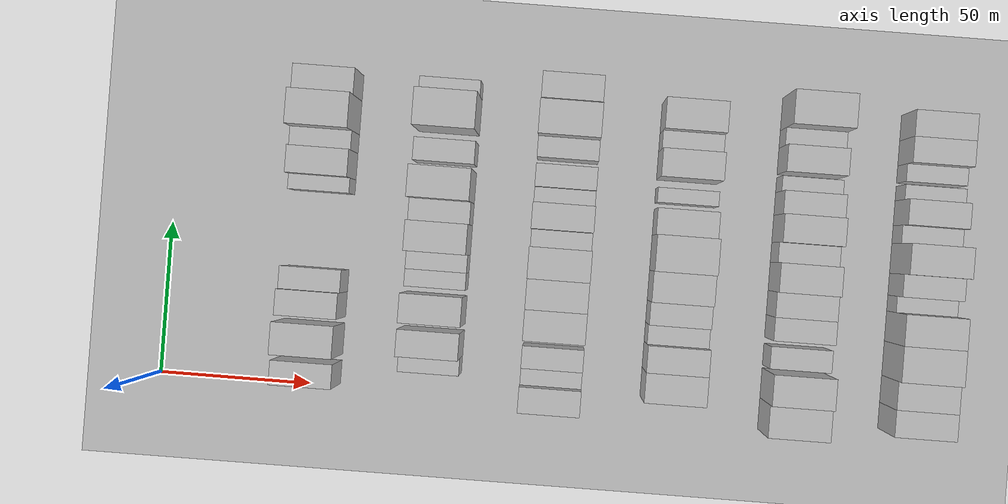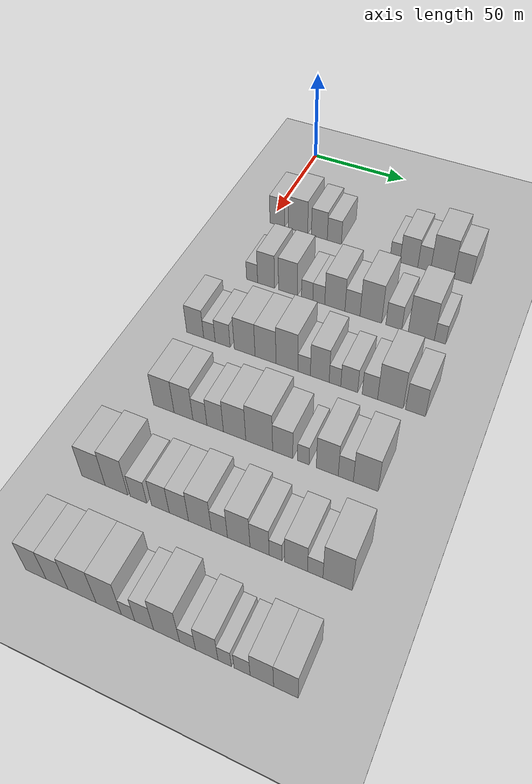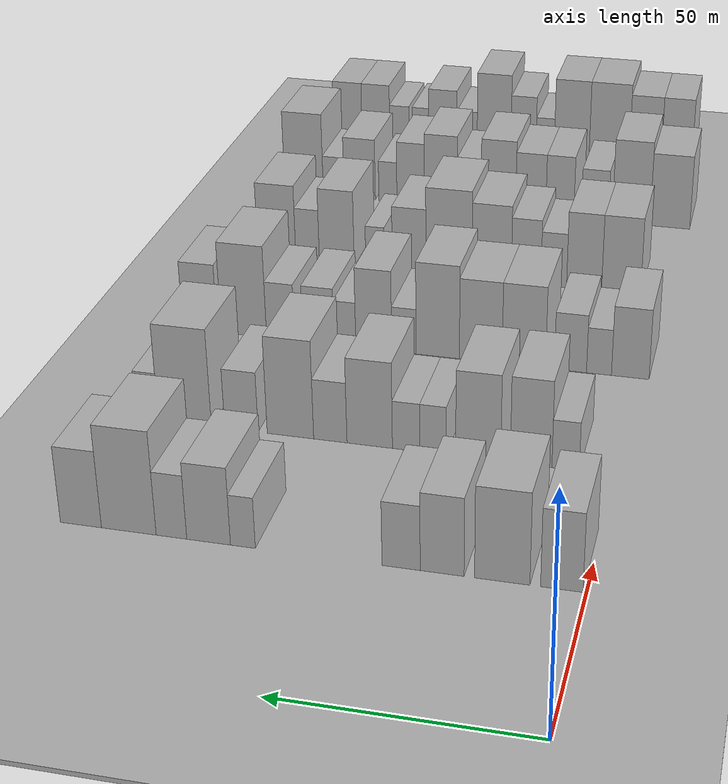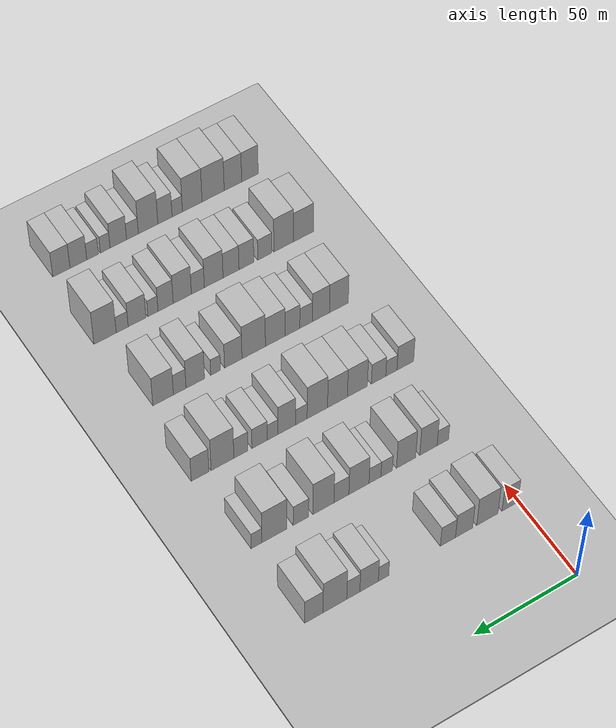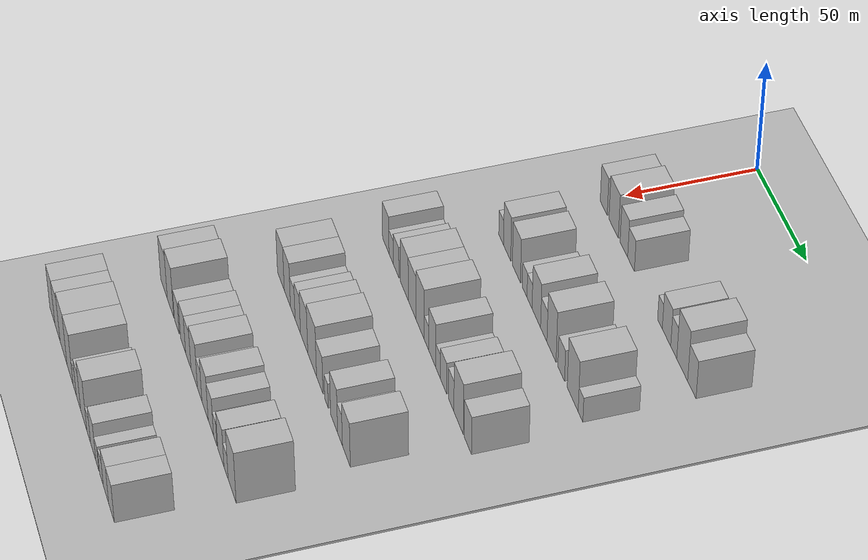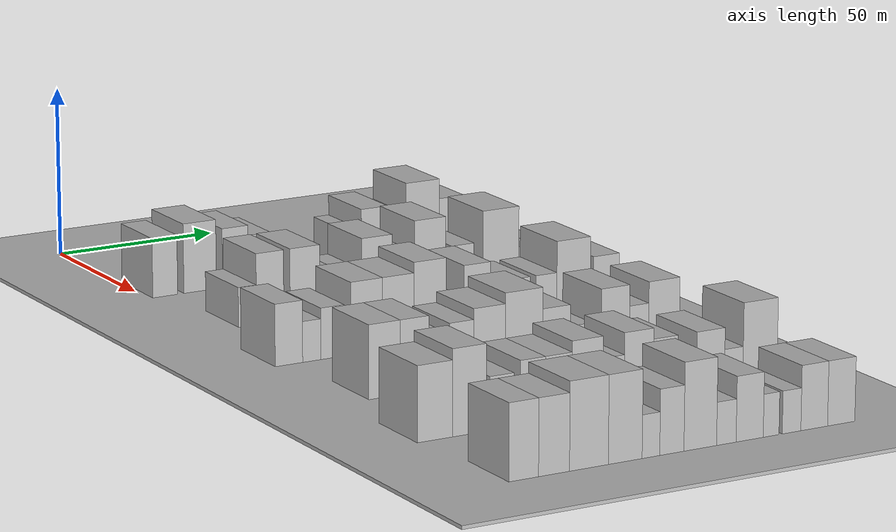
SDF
<sdf version="1.6">
 <world name="default">
  <include><name>ground_plane_1</name><uri>model://HANNAS_ground_plane</uri></include>
  <include>
   <name>ground_plane_2</name>
   <uri>model://HANNAS_ground_plane</uri>
   <pose>100 0 0  0 0 0</pose>
  </include>
  <model name="building_73">
   <static>1</static>
   <pose>50.0000 4.5875 0 0.000000 0.000000 0.000000</pose>
   <link name="link">
    <pose>0 0 9.00 0 0 0</pose>
    <collision name="collision"><geometry><box><size>20.0000 7.9343 18.0000</size></box></geometry></collision>
    <visual name="visual">
     <cast_shadows>0</cast_shadows>
     <geometry><box><size>20.0000 7.9343 18.0000</size></box></geometry>
     <material>
      <script>
       <uri>model://HANNAS_wall/materials/scripts</uri>
       <uri>model://HANNAS_wall/materials/textures</uri>
       <name>vrc/HANNAS_wall</name>
      </script>
     </material>
    </visual>
   </link>
  </model>
  <model name="building_74">
   <static>1</static>
   <pose>50.0000 15.7902 0 0.000000 0.000000 0.000000</pose>
   <link name="link">
    <pose>0 0 10.50 0 0 0</pose>
    <collision name="collision"><geometry><box><size>20.0000 10.4711 21.0000</size></box></geometry></collision>
    <visual name="visual">
     <cast_shadows>0</cast_shadows>
     <geometry><box><size>20.0000 10.4711 21.0000</size></box></geometry>
     <material>
      <script>
       <uri>model://HANNAS_wall/materials/scripts</uri>
       <uri>model://HANNAS_wall/materials/textures</uri>
       <name>vrc/HANNAS_wall</name>
      </script>
     </material>
    </visual>
   </link>
  </model>
  <model name="building_75">
   <static>1</static>
   <pose>50.0000 27.2315 0 0.000000 0.000000 0.000000</pose>
   <link name="link">
    <pose>0 0 9.00 0 0 0</pose>
    <collision name="collision"><geometry><box><size>20.0000 8.4114 18.0000</size></box></geometry></collision>
    <visual name="visual">
     <cast_shadows>0</cast_shadows>
     <geometry><box><size>20.0000 8.4114 18.0000</size></box></geometry>
     <material>
      <script>
       <uri>model://HANNAS_wall/materials/scripts</uri>
       <uri>model://HANNAS_wall/materials/textures</uri>
       <name>vrc/HANNAS_wall</name>
      </script>
     </material>
    </visual>
   </link>
  </model>
  <model name="building_76">
   <static>1</static>
   <pose>50.0000 35.1277 0 0.000000 0.000000 0.000000</pose>
   <link name="link">
    <pose>0 0 7.50 0 0 0</pose>
    <collision name="collision"><geometry><box><size>20.0000 7.3810 15.0000</size></box></geometry></collision>
    <visual name="visual">
     <cast_shadows>0</cast_shadows>
     <geometry><box><size>20.0000 7.3810 15.0000</size></box></geometry>
     <material>
      <script>
       <uri>model://HANNAS_wall/materials/scripts</uri>
       <uri>model://HANNAS_wall/materials/textures</uri>
       <name>vrc/HANNAS_wall</name>
      </script>
     </material>
    </visual>
   </link>
  </model>
  <model name="building_77">
   <static>1</static>
   <pose>50.0000 66.2983 0 0.000000 0.000000 0.000000</pose>
   <link name="link">
    <pose>0 0 6.00 0 0 0</pose>
    <collision name="collision"><geometry><box><size>20.0000 4.9868 12.0000</size></box></geometry></collision>
    <visual name="visual">
     <cast_shadows>0</cast_shadows>
     <geometry><box><size>20.0000 4.9868 12.0000</size></box></geometry>
     <material>
      <script>
       <uri>model://HANNAS_wall/materials/scripts</uri>
       <uri>model://HANNAS_wall/materials/textures</uri>
       <name>vrc/HANNAS_wall</name>
      </script>
     </material>
    </visual>
   </link>
  </model>
  <model name="building_78">
   <static>1</static>
   <pose>50.0000 73.2116 0 0.000000 0.000000 0.000000</pose>
   <link name="link">
    <pose>0 0 9.00 0 0 0</pose>
    <collision name="collision"><geometry><box><size>20.0000 8.8399 18.0000</size></box></geometry></collision>
    <visual name="visual">
     <cast_shadows>0</cast_shadows>
     <geometry><box><size>20.0000 8.8399 18.0000</size></box></geometry>
     <material>
      <script>
       <uri>model://HANNAS_wall/materials/scripts</uri>
       <uri>model://HANNAS_wall/materials/textures</uri>
       <name>vrc/HANNAS_wall</name>
      </script>
     </material>
    </visual>
   </link>
  </model>
  <model name="building_79">
   <static>1</static>
   <pose>50.0000 80.7484 0 0.000000 0.000000 0.000000</pose>
   <link name="link">
    <pose>0 0 7.50 0 0 0</pose>
    <collision name="collision"><geometry><box><size>20.0000 6.2337 15.0000</size></box></geometry></collision>
    <visual name="visual">
     <cast_shadows>0</cast_shadows>
     <geometry><box><size>20.0000 6.2337 15.0000</size></box></geometry>
     <material>
      <script>
       <uri>model://HANNAS_wall/materials/scripts</uri>
       <uri>model://HANNAS_wall/materials/textures</uri>
       <name>vrc/HANNAS_wall</name>
      </script>
     </material>
    </visual>
   </link>
  </model>
  <model name="building_80">
   <static>1</static>
   <pose>50.0000 89.4973 0 0.000000 0.000000 0.000000</pose>
   <link name="link">
    <pose>0 0 12.00 0 0 0</pose>
    <collision name="collision"><geometry><box><size>20.0000 11.2641 24.0000</size></box></geometry></collision>
    <visual name="visual">
     <cast_shadows>0</cast_shadows>
     <geometry><box><size>20.0000 11.2641 24.0000</size></box></geometry>
     <material>
      <script>
       <uri>model://HANNAS_wall/materials/scripts</uri>
       <uri>model://HANNAS_wall/materials/textures</uri>
       <name>vrc/HANNAS_wall</name>
      </script>
     </material>
    </visual>
   </link>
  </model>
  <model name="building_81">
   <static>1</static>
   <pose>50.0000 99.4013 0 0.000000 0.000000 0.000000</pose>
   <link name="link">
    <pose>0 0 9.00 0 0 0</pose>
    <collision name="collision"><geometry><box><size>20.0000 8.5439 18.0000</size></box></geometry></collision>
    <visual name="visual">
     <cast_shadows>0</cast_shadows>
     <geometry><box><size>20.0000 8.5439 18.0000</size></box></geometry>
     <material>
      <script>
       <uri>model://HANNAS_wall/materials/scripts</uri>
       <uri>model://HANNAS_wall/materials/textures</uri>
       <name>vrc/HANNAS_wall</name>
      </script>
     </material>
    </visual>
   </link>
  </model>
  <model name="building_209">
   <static>1</static>
   <pose>90.0000 10.2039 0 0.000000 0.000000 0.000000</pose>
   <link name="link">
    <pose>0 0 6.00 0 0 0</pose>
    <collision name="collision"><geometry><box><size>20.0000 5.6777 12.0000</size></box></geometry></collision>
    <visual name="visual">
     <cast_shadows>0</cast_shadows>
     <geometry><box><size>20.0000 5.6777 12.0000</size></box></geometry>
     <material>
      <script>
       <uri>model://HANNAS_wall/materials/scripts</uri>
       <uri>model://HANNAS_wall/materials/textures</uri>
       <name>vrc/HANNAS_wall</name>
      </script>
     </material>
    </visual>
   </link>
  </model>
  <model name="building_210">
   <static>1</static>
   <pose>90.0000 17.3810 0 0.000000 0.000000 0.000000</pose>
   <link name="link">
    <pose>0 0 10.50 0 0 0</pose>
    <collision name="collision"><geometry><box><size>20.0000 8.6765 21.0000</size></box></geometry></collision>
    <visual name="visual">
     <cast_shadows>0</cast_shadows>
     <geometry><box><size>20.0000 8.6765 21.0000</size></box></geometry>
     <material>
      <script>
       <uri>model://HANNAS_wall/materials/scripts</uri>
       <uri>model://HANNAS_wall/materials/textures</uri>
       <name>vrc/HANNAS_wall</name>
      </script>
     </material>
    </visual>
   </link>
  </model>
  <model name="building_211">
   <static>1</static>
   <pose>90.0000 28.4719 0 0.000000 0.000000 0.000000</pose>
   <link name="link">
    <pose>0 0 10.50 0 0 0</pose>
    <collision name="collision"><geometry><box><size>20.0000 9.5054 21.0000</size></box></geometry></collision>
    <visual name="visual">
     <cast_shadows>0</cast_shadows>
     <geometry><box><size>20.0000 9.5054 21.0000</size></box></geometry>
     <material>
      <script>
       <uri>model://HANNAS_wall/materials/scripts</uri>
       <uri>model://HANNAS_wall/materials/textures</uri>
       <name>vrc/HANNAS_wall</name>
      </script>
     </material>
    </visual>
   </link>
  </model>
  <model name="building_212">
   <static>1</static>
   <pose>90.0000 38.0487 0 0.000000 0.000000 0.000000</pose>
   <link name="link">
    <pose>0 0 6.00 0 0 0</pose>
    <collision name="collision"><geometry><box><size>20.0000 5.6481 12.0000</size></box></geometry></collision>
    <visual name="visual">
     <cast_shadows>0</cast_shadows>
     <geometry><box><size>20.0000 5.6481 12.0000</size></box></geometry>
     <material>
      <script>
       <uri>model://HANNAS_wall/materials/scripts</uri>
       <uri>model://HANNAS_wall/materials/textures</uri>
       <name>vrc/HANNAS_wall</name>
      </script>
     </material>
    </visual>
   </link>
  </model>
  <model name="building_213">
   <static>1</static>
   <pose>90.0000 43.8070 0 0.000000 0.000000 0.000000</pose>
   <link name="link">
    <pose>0 0 6.00 0 0 0</pose>
    <collision name="collision"><geometry><box><size>20.0000 5.8685 12.0000</size></box></geometry></collision>
    <visual name="visual">
     <cast_shadows>0</cast_shadows>
     <geometry><box><size>20.0000 5.8685 12.0000</size></box></geometry>
     <material>
      <script>
       <uri>model://HANNAS_wall/materials/scripts</uri>
       <uri>model://HANNAS_wall/materials/textures</uri>
       <name>vrc/HANNAS_wall</name>
      </script>
     </material>
    </visual>
   </link>
  </model>
  <model name="building_214">
   <static>1</static>
   <pose>90.0000 51.6555 0 0.000000 0.000000 0.000000</pose>
   <link name="link">
    <pose>0 0 10.50 0 0 0</pose>
    <collision name="collision"><geometry><box><size>20.0000 9.8285 21.0000</size></box></geometry></collision>
    <visual name="visual">
     <cast_shadows>0</cast_shadows>
     <geometry><box><size>20.0000 9.8285 21.0000</size></box></geometry>
     <material>
      <script>
       <uri>model://HANNAS_wall/materials/scripts</uri>
       <uri>model://HANNAS_wall/materials/textures</uri>
       <name>vrc/HANNAS_wall</name>
      </script>
     </material>
    </visual>
   </link>
  </model>
  <model name="building_215">
   <static>1</static>
   <pose>90.0000 60.2045 0 0.000000 0.000000 0.000000</pose>
   <link name="link">
    <pose>0 0 7.50 0 0 0</pose>
    <collision name="collision"><geometry><box><size>20.0000 7.2696 15.0000</size></box></geometry></collision>
    <visual name="visual">
     <cast_shadows>0</cast_shadows>
     <geometry><box><size>20.0000 7.2696 15.0000</size></box></geometry>
     <material>
      <script>
       <uri>model://HANNAS_wall/materials/scripts</uri>
       <uri>model://HANNAS_wall/materials/textures</uri>
       <name>vrc/HANNAS_wall</name>
      </script>
     </material>
    </visual>
   </link>
  </model>
  <model name="building_216">
   <static>1</static>
   <pose>90.0000 68.9552 0 0.000000 0.000000 0.000000</pose>
   <link name="link">
    <pose>0 0 12.00 0 0 0</pose>
    <collision name="collision"><geometry><box><size>20.0000 10.2319 24.0000</size></box></geometry></collision>
    <visual name="visual">
     <cast_shadows>0</cast_shadows>
     <geometry><box><size>20.0000 10.2319 24.0000</size></box></geometry>
     <material>
      <script>
       <uri>model://HANNAS_wall/materials/scripts</uri>
       <uri>model://HANNAS_wall/materials/textures</uri>
       <name>vrc/HANNAS_wall</name>
      </script>
     </material>
    </visual>
   </link>
  </model>
  <model name="building_217">
   <static>1</static>
   <pose>90.0000 79.7930 0 0.000000 0.000000 0.000000</pose>
   <link name="link">
    <pose>0 0 7.50 0 0 0</pose>
    <collision name="collision"><geometry><box><size>20.0000 7.4435 15.0000</size></box></geometry></collision>
    <visual name="visual">
     <cast_shadows>0</cast_shadows>
     <geometry><box><size>20.0000 7.4435 15.0000</size></box></geometry>
     <material>
      <script>
       <uri>model://HANNAS_wall/materials/scripts</uri>
       <uri>model://HANNAS_wall/materials/textures</uri>
       <name>vrc/HANNAS_wall</name>
      </script>
     </material>
    </visual>
   </link>
  </model>
  <model name="building_218">
   <static>1</static>
   <pose>90.0000 92.4894 0 0.000000 0.000000 0.000000</pose>
   <link name="link">
    <pose>0 0 12.00 0 0 0</pose>
    <collision name="collision"><geometry><box><size>20.0000 11.9494 24.0000</size></box></geometry></collision>
    <visual name="visual">
     <cast_shadows>0</cast_shadows>
     <geometry><box><size>20.0000 11.9494 24.0000</size></box></geometry>
     <material>
      <script>
       <uri>model://HANNAS_wall/materials/scripts</uri>
       <uri>model://HANNAS_wall/materials/textures</uri>
       <name>vrc/HANNAS_wall</name>
      </script>
     </material>
    </visual>
   </link>
  </model>
  <model name="building_219">
   <static>1</static>
   <pose>90.0000 101.0176 0 0.000000 0.000000 0.000000</pose>
   <link name="link">
    <pose>0 0 6.00 0 0 0</pose>
    <collision name="collision"><geometry><box><size>20.0000 5.1068 12.0000</size></box></geometry></collision>
    <visual name="visual">
     <cast_shadows>0</cast_shadows>
     <geometry><box><size>20.0000 5.1068 12.0000</size></box></geometry>
     <material>
      <script>
       <uri>model://HANNAS_wall/materials/scripts</uri>
       <uri>model://HANNAS_wall/materials/textures</uri>
       <name>vrc/HANNAS_wall</name>
      </script>
     </material>
    </visual>
   </link>
  </model>
  <model name="building_351">
   <static>1</static>
   <pose>130.0000 1.9299 0 0.000000 0.000000 0.000000</pose>
   <link name="link">
    <pose>0 0 9.00 0 0 0</pose>
    <collision name="collision"><geometry><box><size>20.0000 8.4402 18.0000</size></box></geometry></collision>
    <visual name="visual">
     <cast_shadows>0</cast_shadows>
     <geometry><box><size>20.0000 8.4402 18.0000</size></box></geometry>
     <material>
      <script>
       <uri>model://HANNAS_wall/materials/scripts</uri>
       <uri>model://HANNAS_wall/materials/textures</uri>
       <name>vrc/HANNAS_wall</name>
      </script>
     </material>
    </visual>
   </link>
  </model>
  <model name="building_352">
   <static>1</static>
   <pose>130.0000 8.9673 0 0.000000 0.000000 0.000000</pose>
   <link name="link">
    <pose>0 0 6.00 0 0 0</pose>
    <collision name="collision"><geometry><box><size>20.0000 5.6347 12.0000</size></box></geometry></collision>
    <visual name="visual">
     <cast_shadows>0</cast_shadows>
     <geometry><box><size>20.0000 5.6347 12.0000</size></box></geometry>
     <material>
      <script>
       <uri>model://HANNAS_wall/materials/scripts</uri>
       <uri>model://HANNAS_wall/materials/textures</uri>
       <name>vrc/HANNAS_wall</name>
      </script>
     </material>
    </visual>
   </link>
  </model>
  <model name="building_353">
   <static>1</static>
   <pose>130.0000 15.4343 0 0.000000 0.000000 0.000000</pose>
   <link name="link">
    <pose>0 0 7.50 0 0 0</pose>
    <collision name="collision"><geometry><box><size>20.0000 7.2992 15.0000</size></box></geometry></collision>
    <visual name="visual">
     <cast_shadows>0</cast_shadows>
     <geometry><box><size>20.0000 7.2992 15.0000</size></box></geometry>
     <material>
      <script>
       <uri>model://HANNAS_wall/materials/scripts</uri>
       <uri>model://HANNAS_wall/materials/textures</uri>
       <name>vrc/HANNAS_wall</name>
      </script>
     </material>
    </visual>
   </link>
  </model>
  <model name="building_354">
   <static>1</static>
   <pose>130.0000 26.0752 0 0.000000 0.000000 0.000000</pose>
   <link name="link">
    <pose>0 0 10.50 0 0 0</pose>
    <collision name="collision"><geometry><box><size>20.0000 9.9826 21.0000</size></box></geometry></collision>
    <visual name="visual">
     <cast_shadows>0</cast_shadows>
     <geometry><box><size>20.0000 9.9826 21.0000</size></box></geometry>
     <material>
      <script>
       <uri>model://HANNAS_wall/materials/scripts</uri>
       <uri>model://HANNAS_wall/materials/textures</uri>
       <name>vrc/HANNAS_wall</name>
      </script>
     </material>
    </visual>
   </link>
  </model>
  <model name="building_355">
   <static>1</static>
   <pose>130.0000 36.0092 0 0.000000 0.000000 0.000000</pose>
   <link name="link">
    <pose>0 0 10.50 0 0 0</pose>
    <collision name="collision"><geometry><box><size>20.0000 9.8853 21.0000</size></box></geometry></collision>
    <visual name="visual">
     <cast_shadows>0</cast_shadows>
     <geometry><box><size>20.0000 9.8853 21.0000</size></box></geometry>
     <material>
      <script>
       <uri>model://HANNAS_wall/materials/scripts</uri>
       <uri>model://HANNAS_wall/materials/textures</uri>
       <name>vrc/HANNAS_wall</name>
      </script>
     </material>
    </visual>
   </link>
  </model>
  <model name="building_356">
   <static>1</static>
   <pose>130.0000 46.0207 0 0.000000 0.000000 0.000000</pose>
   <link name="link">
    <pose>0 0 12.00 0 0 0</pose>
    <collision name="collision"><geometry><box><size>20.0000 10.1377 24.0000</size></box></geometry></collision>
    <visual name="visual">
     <cast_shadows>0</cast_shadows>
     <geometry><box><size>20.0000 10.1377 24.0000</size></box></geometry>
     <material>
      <script>
       <uri>model://HANNAS_wall/materials/scripts</uri>
       <uri>model://HANNAS_wall/materials/textures</uri>
       <name>vrc/HANNAS_wall</name>
      </script>
     </material>
    </visual>
   </link>
  </model>
  <model name="building_357">
   <static>1</static>
   <pose>130.0000 53.9658 0 0.000000 0.000000 0.000000</pose>
   <link name="link">
    <pose>0 0 6.00 0 0 0</pose>
    <collision name="collision"><geometry><box><size>20.0000 5.7525 12.0000</size></box></geometry></collision>
    <visual name="visual">
     <cast_shadows>0</cast_shadows>
     <geometry><box><size>20.0000 5.7525 12.0000</size></box></geometry>
     <material>
      <script>
       <uri>model://HANNAS_wall/materials/scripts</uri>
       <uri>model://HANNAS_wall/materials/textures</uri>
       <name>vrc/HANNAS_wall</name>
      </script>
     </material>
    </visual>
   </link>
  </model>
  <model name="building_358">
   <static>1</static>
   <pose>130.0000 61.1033 0 0.000000 0.000000 0.000000</pose>
   <link name="link">
    <pose>0 0 10.50 0 0 0</pose>
    <collision name="collision"><geometry><box><size>20.0000 8.5226 21.0000</size></box></geometry></collision>
    <visual name="visual">
     <cast_shadows>0</cast_shadows>
     <geometry><box><size>20.0000 8.5226 21.0000</size></box></geometry>
     <material>
      <script>
       <uri>model://HANNAS_wall/materials/scripts</uri>
       <uri>model://HANNAS_wall/materials/textures</uri>
       <name>vrc/HANNAS_wall</name>
      </script>
     </material>
    </visual>
   </link>
  </model>
  <model name="building_359">
   <static>1</static>
   <pose>130.0000 67.9864 0 0.000000 0.000000 0.000000</pose>
   <link name="link">
    <pose>0 0 6.00 0 0 0</pose>
    <collision name="collision"><geometry><box><size>20.0000 5.2435 12.0000</size></box></geometry></collision>
    <visual name="visual">
     <cast_shadows>0</cast_shadows>
     <geometry><box><size>20.0000 5.2435 12.0000</size></box></geometry>
     <material>
      <script>
       <uri>model://HANNAS_wall/materials/scripts</uri>
       <uri>model://HANNAS_wall/materials/textures</uri>
       <name>vrc/HANNAS_wall</name>
      </script>
     </material>
    </visual>
   </link>
  </model>
  <model name="building_360">
   <static>1</static>
   <pose>130.0000 74.3565 0 0.000000 0.000000 0.000000</pose>
   <link name="link">
    <pose>0 0 7.50 0 0 0</pose>
    <collision name="collision"><geometry><box><size>20.0000 7.4967 15.0000</size></box></geometry></collision>
    <visual name="visual">
     <cast_shadows>0</cast_shadows>
     <geometry><box><size>20.0000 7.4967 15.0000</size></box></geometry>
     <material>
      <script>
       <uri>model://HANNAS_wall/materials/scripts</uri>
       <uri>model://HANNAS_wall/materials/textures</uri>
       <name>vrc/HANNAS_wall</name>
      </script>
     </material>
    </visual>
   </link>
  </model>
  <model name="building_361">
   <static>1</static>
   <pose>130.0000 83.4857 0 0.000000 0.000000 0.000000</pose>
   <link name="link">
    <pose>0 0 7.50 0 0 0</pose>
    <collision name="collision"><geometry><box><size>20.0000 6.7618 15.0000</size></box></geometry></collision>
    <visual name="visual">
     <cast_shadows>0</cast_shadows>
     <geometry><box><size>20.0000 6.7618 15.0000</size></box></geometry>
     <material>
      <script>
       <uri>model://HANNAS_wall/materials/scripts</uri>
       <uri>model://HANNAS_wall/materials/textures</uri>
       <name>vrc/HANNAS_wall</name>
      </script>
     </material>
    </visual>
   </link>
  </model>
  <model name="building_362">
   <static>1</static>
   <pose>130.0000 92.3909 0 0.000000 0.000000 0.000000</pose>
   <link name="link">
    <pose>0 0 12.00 0 0 0</pose>
    <collision name="collision"><geometry><box><size>20.0000 11.0485 24.0000</size></box></geometry></collision>
    <visual name="visual">
     <cast_shadows>0</cast_shadows>
     <geometry><box><size>20.0000 11.0485 24.0000</size></box></geometry>
     <material>
      <script>
       <uri>model://HANNAS_wall/materials/scripts</uri>
       <uri>model://HANNAS_wall/materials/textures</uri>
       <name>vrc/HANNAS_wall</name>
      </script>
     </material>
    </visual>
   </link>
  </model>
  <model name="building_363">
   <static>1</static>
   <pose>130.0000 103.1603 0 0.000000 0.000000 0.000000</pose>
   <link name="link">
    <pose>0 0 9.00 0 0 0</pose>
    <collision name="collision"><geometry><box><size>20.0000 8.4903 18.0000</size></box></geometry></collision>
    <visual name="visual">
     <cast_shadows>0</cast_shadows>
     <geometry><box><size>20.0000 8.4903 18.0000</size></box></geometry>
     <material>
      <script>
       <uri>model://HANNAS_wall/materials/scripts</uri>
       <uri>model://HANNAS_wall/materials/textures</uri>
       <name>vrc/HANNAS_wall</name>
      </script>
     </material>
    </visual>
   </link>
  </model>
  <model name="building_495">
   <static>1</static>
   <pose>170.0000 9.2009 0 0.000000 0.000000 0.000000</pose>
   <link name="link">
    <pose>0 0 10.50 0 0 0</pose>
    <collision name="collision"><geometry><box><size>20.0000 9.5706 21.0000</size></box></geometry></collision>
    <visual name="visual">
     <cast_shadows>0</cast_shadows>
     <geometry><box><size>20.0000 9.5706 21.0000</size></box></geometry>
     <material>
      <script>
       <uri>model://HANNAS_wall/materials/scripts</uri>
       <uri>model://HANNAS_wall/materials/textures</uri>
       <name>vrc/HANNAS_wall</name>
      </script>
     </material>
    </visual>
   </link>
  </model>
  <model name="building_496">
   <static>1</static>
   <pose>170.0000 18.3097 0 0.000000 0.000000 0.000000</pose>
   <link name="link">
    <pose>0 0 10.50 0 0 0</pose>
    <collision name="collision"><geometry><box><size>20.0000 8.6471 21.0000</size></box></geometry></collision>
    <visual name="visual">
     <cast_shadows>0</cast_shadows>
     <geometry><box><size>20.0000 8.6471 21.0000</size></box></geometry>
     <material>
      <script>
       <uri>model://HANNAS_wall/materials/scripts</uri>
       <uri>model://HANNAS_wall/materials/textures</uri>
       <name>vrc/HANNAS_wall</name>
      </script>
     </material>
    </visual>
   </link>
  </model>
  <model name="building_497">
   <static>1</static>
   <pose>170.0000 25.8226 0 0.000000 0.000000 0.000000</pose>
   <link name="link">
    <pose>0 0 7.50 0 0 0</pose>
    <collision name="collision"><geometry><box><size>20.0000 6.3787 15.0000</size></box></geometry></collision>
    <visual name="visual">
     <cast_shadows>0</cast_shadows>
     <geometry><box><size>20.0000 6.3787 15.0000</size></box></geometry>
     <material>
      <script>
       <uri>model://HANNAS_wall/materials/scripts</uri>
       <uri>model://HANNAS_wall/materials/textures</uri>
       <name>vrc/HANNAS_wall</name>
      </script>
     </material>
    </visual>
   </link>
  </model>
  <model name="building_498">
   <static>1</static>
   <pose>170.0000 32.7212 0 0.000000 0.000000 0.000000</pose>
   <link name="link">
    <pose>0 0 9.00 0 0 0</pose>
    <collision name="collision"><geometry><box><size>20.0000 7.4184 18.0000</size></box></geometry></collision>
    <visual name="visual">
     <cast_shadows>0</cast_shadows>
     <geometry><box><size>20.0000 7.4184 18.0000</size></box></geometry>
     <material>
      <script>
       <uri>model://HANNAS_wall/materials/scripts</uri>
       <uri>model://HANNAS_wall/materials/textures</uri>
       <name>vrc/HANNAS_wall</name>
      </script>
     </material>
    </visual>
   </link>
  </model>
  <model name="building_499">
   <static>1</static>
   <pose>170.0000 41.3794 0 0.000000 0.000000 0.000000</pose>
   <link name="link">
    <pose>0 0 10.50 0 0 0</pose>
    <collision name="collision"><geometry><box><size>20.0000 9.8979 21.0000</size></box></geometry></collision>
    <visual name="visual">
     <cast_shadows>0</cast_shadows>
     <geometry><box><size>20.0000 9.8979 21.0000</size></box></geometry>
     <material>
      <script>
       <uri>model://HANNAS_wall/materials/scripts</uri>
       <uri>model://HANNAS_wall/materials/textures</uri>
       <name>vrc/HANNAS_wall</name>
      </script>
     </material>
    </visual>
   </link>
  </model>
  <model name="building_500">
   <static>1</static>
   <pose>170.0000 52.1696 0 0.000000 0.000000 0.000000</pose>
   <link name="link">
    <pose>0 0 12.00 0 0 0</pose>
    <collision name="collision"><geometry><box><size>20.0000 11.6826 24.0000</size></box></geometry></collision>
    <visual name="visual">
     <cast_shadows>0</cast_shadows>
     <geometry><box><size>20.0000 11.6826 24.0000</size></box></geometry>
     <material>
      <script>
       <uri>model://HANNAS_wall/materials/scripts</uri>
       <uri>model://HANNAS_wall/materials/textures</uri>
       <name>vrc/HANNAS_wall</name>
      </script>
     </material>
    </visual>
   </link>
  </model>
  <model name="building_501">
   <static>1</static>
   <pose>170.0000 62.3273 0 0.000000 0.000000 0.000000</pose>
   <link name="link">
    <pose>0 0 9.00 0 0 0</pose>
    <collision name="collision"><geometry><box><size>20.0000 8.6328 18.0000</size></box></geometry></collision>
    <visual name="visual">
     <cast_shadows>0</cast_shadows>
     <geometry><box><size>20.0000 8.6328 18.0000</size></box></geometry>
     <material>
      <script>
       <uri>model://HANNAS_wall/materials/scripts</uri>
       <uri>model://HANNAS_wall/materials/textures</uri>
       <name>vrc/HANNAS_wall</name>
      </script>
     </material>
    </visual>
   </link>
  </model>
  <model name="building_502">
   <static>1</static>
   <pose>170.0000 71.0734 0 0.000000 0.000000 0.000000</pose>
   <link name="link">
    <pose>0 0 6.00 0 0 0</pose>
    <collision name="collision"><geometry><box><size>20.0000 4.8594 12.0000</size></box></geometry></collision>
    <visual name="visual">
     <cast_shadows>0</cast_shadows>
     <geometry><box><size>20.0000 4.8594 12.0000</size></box></geometry>
     <material>
      <script>
       <uri>model://HANNAS_wall/materials/scripts</uri>
       <uri>model://HANNAS_wall/materials/textures</uri>
       <name>vrc/HANNAS_wall</name>
      </script>
     </material>
    </visual>
   </link>
  </model>
  <model name="building_503">
   <static>1</static>
   <pose>170.0000 81.0449 0 0.000000 0.000000 0.000000</pose>
   <link name="link">
    <pose>0 0 10.50 0 0 0</pose>
    <collision name="collision"><geometry><box><size>20.0000 9.0837 21.0000</size></box></geometry></collision>
    <visual name="visual">
     <cast_shadows>0</cast_shadows>
     <geometry><box><size>20.0000 9.0837 21.0000</size></box></geometry>
     <material>
      <script>
       <uri>model://HANNAS_wall/materials/scripts</uri>
       <uri>model://HANNAS_wall/materials/textures</uri>
       <name>vrc/HANNAS_wall</name>
      </script>
     </material>
    </visual>
   </link>
  </model>
  <model name="building_504">
   <static>1</static>
   <pose>170.0000 88.6730 0 0.000000 0.000000 0.000000</pose>
   <link name="link">
    <pose>0 0 7.50 0 0 0</pose>
    <collision name="collision"><geometry><box><size>20.0000 6.1724 15.0000</size></box></geometry></collision>
    <visual name="visual">
     <cast_shadows>0</cast_shadows>
     <geometry><box><size>20.0000 6.1724 15.0000</size></box></geometry>
     <material>
      <script>
       <uri>model://HANNAS_wall/materials/scripts</uri>
       <uri>model://HANNAS_wall/materials/textures</uri>
       <name>vrc/HANNAS_wall</name>
      </script>
     </material>
    </visual>
   </link>
  </model>
  <model name="building_505">
   <static>1</static>
   <pose>170.0000 96.7670 0 0.000000 0.000000 0.000000</pose>
   <link name="link">
    <pose>0 0 10.50 0 0 0</pose>
    <collision name="collision"><geometry><box><size>20.0000 10.0156 21.0000</size></box></geometry></collision>
    <visual name="visual">
     <cast_shadows>0</cast_shadows>
     <geometry><box><size>20.0000 10.0156 21.0000</size></box></geometry>
     <material>
      <script>
       <uri>model://HANNAS_wall/materials/scripts</uri>
       <uri>model://HANNAS_wall/materials/textures</uri>
       <name>vrc/HANNAS_wall</name>
      </script>
     </material>
    </visual>
   </link>
  </model>
  <model name="building_644">
   <static>1</static>
   <pose>210.0000 1.5534 0 0.000000 0.000000 0.000000</pose>
   <link name="link">
    <pose>0 0 10.50 0 0 0</pose>
    <collision name="collision"><geometry><box><size>20.0000 10.4448 21.0000</size></box></geometry></collision>
    <visual name="visual">
     <cast_shadows>0</cast_shadows>
     <geometry><box><size>20.0000 10.4448 21.0000</size></box></geometry>
     <material>
      <script>
       <uri>model://HANNAS_wall/materials/scripts</uri>
       <uri>model://HANNAS_wall/materials/textures</uri>
       <name>vrc/HANNAS_wall</name>
      </script>
     </material>
    </visual>
   </link>
  </model>
  <model name="building_645">
   <static>1</static>
   <pose>210.0000 11.7723 0 0.000000 0.000000 0.000000</pose>
   <link name="link">
    <pose>0 0 12.00 0 0 0</pose>
    <collision name="collision"><geometry><box><size>20.0000 9.9929 24.0000</size></box></geometry></collision>
    <visual name="visual">
     <cast_shadows>0</cast_shadows>
     <geometry><box><size>20.0000 9.9929 24.0000</size></box></geometry>
     <material>
      <script>
       <uri>model://HANNAS_wall/materials/scripts</uri>
       <uri>model://HANNAS_wall/materials/textures</uri>
       <name>vrc/HANNAS_wall</name>
      </script>
     </material>
    </visual>
   </link>
  </model>
  <model name="building_646">
   <static>1</static>
   <pose>210.0000 21.3905 0 0.000000 0.000000 0.000000</pose>
   <link name="link">
    <pose>0 0 7.50 0 0 0</pose>
    <collision name="collision"><geometry><box><size>20.0000 7.2435 15.0000</size></box></geometry></collision>
    <visual name="visual">
     <cast_shadows>0</cast_shadows>
     <geometry><box><size>20.0000 7.2435 15.0000</size></box></geometry>
     <material>
      <script>
       <uri>model://HANNAS_wall/materials/scripts</uri>
       <uri>model://HANNAS_wall/materials/textures</uri>
       <name>vrc/HANNAS_wall</name>
      </script>
     </material>
    </visual>
   </link>
  </model>
  <model name="building_647">
   <static>1</static>
   <pose>210.0000 30.7788 0 0.000000 0.000000 0.000000</pose>
   <link name="link">
    <pose>0 0 9.00 0 0 0</pose>
    <collision name="collision"><geometry><box><size>20.0000 7.5332 18.0000</size></box></geometry></collision>
    <visual name="visual">
     <cast_shadows>0</cast_shadows>
     <geometry><box><size>20.0000 7.5332 18.0000</size></box></geometry>
     <material>
      <script>
       <uri>model://HANNAS_wall/materials/scripts</uri>
       <uri>model://HANNAS_wall/materials/textures</uri>
       <name>vrc/HANNAS_wall</name>
      </script>
     </material>
    </visual>
   </link>
  </model>
  <model name="building_648">
   <static>1</static>
   <pose>210.0000 38.6014 0 0.000000 0.000000 0.000000</pose>
   <link name="link">
    <pose>0 0 9.00 0 0 0</pose>
    <collision name="collision"><geometry><box><size>20.0000 8.1119 18.0000</size></box></geometry></collision>
    <visual name="visual">
     <cast_shadows>0</cast_shadows>
     <geometry><box><size>20.0000 8.1119 18.0000</size></box></geometry>
     <material>
      <script>
       <uri>model://HANNAS_wall/materials/scripts</uri>
       <uri>model://HANNAS_wall/materials/textures</uri>
       <name>vrc/HANNAS_wall</name>
      </script>
     </material>
    </visual>
   </link>
  </model>
  <model name="building_649">
   <static>1</static>
   <pose>210.0000 47.3815 0 0.000000 0.000000 0.000000</pose>
   <link name="link">
    <pose>0 0 10.50 0 0 0</pose>
    <collision name="collision"><geometry><box><size>20.0000 9.4483 21.0000</size></box></geometry></collision>
    <visual name="visual">
     <cast_shadows>0</cast_shadows>
     <geometry><box><size>20.0000 9.4483 21.0000</size></box></geometry>
     <material>
      <script>
       <uri>model://HANNAS_wall/materials/scripts</uri>
       <uri>model://HANNAS_wall/materials/textures</uri>
       <name>vrc/HANNAS_wall</name>
      </script>
     </material>
    </visual>
   </link>
  </model>
  <model name="building_650">
   <static>1</static>
   <pose>210.0000 55.3748 0 0.000000 0.000000 0.000000</pose>
   <link name="link">
    <pose>0 0 7.50 0 0 0</pose>
    <collision name="collision"><geometry><box><size>20.0000 6.5382 15.0000</size></box></geometry></collision>
    <visual name="visual">
     <cast_shadows>0</cast_shadows>
     <geometry><box><size>20.0000 6.5382 15.0000</size></box></geometry>
     <material>
      <script>
       <uri>model://HANNAS_wall/materials/scripts</uri>
       <uri>model://HANNAS_wall/materials/textures</uri>
       <name>vrc/HANNAS_wall</name>
      </script>
     </material>
    </visual>
   </link>
  </model>
  <model name="building_651">
   <static>1</static>
   <pose>210.0000 63.1900 0 0.000000 0.000000 0.000000</pose>
   <link name="link">
    <pose>0 0 10.50 0 0 0</pose>
    <collision name="collision"><geometry><box><size>20.0000 9.0922 21.0000</size></box></geometry></collision>
    <visual name="visual">
     <cast_shadows>0</cast_shadows>
     <geometry><box><size>20.0000 9.0922 21.0000</size></box></geometry>
     <material>
      <script>
       <uri>model://HANNAS_wall/materials/scripts</uri>
       <uri>model://HANNAS_wall/materials/textures</uri>
       <name>vrc/HANNAS_wall</name>
      </script>
     </material>
    </visual>
   </link>
  </model>
  <model name="building_652">
   <static>1</static>
   <pose>210.0000 71.5212 0 0.000000 0.000000 0.000000</pose>
   <link name="link">
    <pose>0 0 9.00 0 0 0</pose>
    <collision name="collision"><geometry><box><size>20.0000 7.5704 18.0000</size></box></geometry></collision>
    <visual name="visual">
     <cast_shadows>0</cast_shadows>
     <geometry><box><size>20.0000 7.5704 18.0000</size></box></geometry>
     <material>
      <script>
       <uri>model://HANNAS_wall/materials/scripts</uri>
       <uri>model://HANNAS_wall/materials/textures</uri>
       <name>vrc/HANNAS_wall</name>
      </script>
     </material>
    </visual>
   </link>
  </model>
  <model name="building_653">
   <static>1</static>
   <pose>210.0000 77.8218 0 0.000000 0.000000 0.000000</pose>
   <link name="link">
    <pose>0 0 6.00 0 0 0</pose>
    <collision name="collision"><geometry><box><size>20.0000 5.0308 12.0000</size></box></geometry></collision>
    <visual name="visual">
     <cast_shadows>0</cast_shadows>
     <geometry><box><size>20.0000 5.0308 12.0000</size></box></geometry>
     <material>
      <script>
       <uri>model://HANNAS_wall/materials/scripts</uri>
       <uri>model://HANNAS_wall/materials/textures</uri>
       <name>vrc/HANNAS_wall</name>
      </script>
     </material>
    </visual>
   </link>
  </model>
  <model name="building_654">
   <static>1</static>
   <pose>210.0000 85.7301 0 0.000000 0.000000 0.000000</pose>
   <link name="link">
    <pose>0 0 9.00 0 0 0</pose>
    <collision name="collision"><geometry><box><size>20.0000 8.7858 18.0000</size></box></geometry></collision>
    <visual name="visual">
     <cast_shadows>0</cast_shadows>
     <geometry><box><size>20.0000 8.7858 18.0000</size></box></geometry>
     <material>
      <script>
       <uri>model://HANNAS_wall/materials/scripts</uri>
       <uri>model://HANNAS_wall/materials/textures</uri>
       <name>vrc/HANNAS_wall</name>
      </script>
     </material>
    </visual>
   </link>
  </model>
  <model name="building_655">
   <static>1</static>
   <pose>210.0000 93.0549 0 0.000000 0.000000 0.000000</pose>
   <link name="link">
    <pose>0 0 6.00 0 0 0</pose>
    <collision name="collision"><geometry><box><size>20.0000 5.8638 12.0000</size></box></geometry></collision>
    <visual name="visual">
     <cast_shadows>0</cast_shadows>
     <geometry><box><size>20.0000 5.8638 12.0000</size></box></geometry>
     <material>
      <script>
       <uri>model://HANNAS_wall/materials/scripts</uri>
       <uri>model://HANNAS_wall/materials/textures</uri>
       <name>vrc/HANNAS_wall</name>
      </script>
     </material>
    </visual>
   </link>
  </model>
  <model name="building_656">
   <static>1</static>
   <pose>210.0000 101.4604 0 0.000000 0.000000 0.000000</pose>
   <link name="link">
    <pose>0 0 12.00 0 0 0</pose>
    <collision name="collision"><geometry><box><size>20.0000 10.9472 24.0000</size></box></geometry></collision>
    <visual name="visual">
     <cast_shadows>0</cast_shadows>
     <geometry><box><size>20.0000 10.9472 24.0000</size></box></geometry>
     <material>
      <script>
       <uri>model://HANNAS_wall/materials/scripts</uri>
       <uri>model://HANNAS_wall/materials/textures</uri>
       <name>vrc/HANNAS_wall</name>
      </script>
     </material>
    </visual>
   </link>
  </model>
  <model name="building_783">
   <static>1</static>
   <pose>250.0000 3.9735 0 0.000000 0.000000 0.000000</pose>
   <link name="link">
    <pose>0 0 10.50 0 0 0</pose>
    <collision name="collision"><geometry><box><size>20.0000 8.6365 21.0000</size></box></geometry></collision>
    <visual name="visual">
     <cast_shadows>0</cast_shadows>
     <geometry><box><size>20.0000 8.6365 21.0000</size></box></geometry>
     <material>
      <script>
       <uri>model://HANNAS_wall/materials/scripts</uri>
       <uri>model://HANNAS_wall/materials/textures</uri>
       <name>vrc/HANNAS_wall</name>
      </script>
     </material>
    </visual>
   </link>
  </model>
  <model name="building_784">
   <static>1</static>
   <pose>250.0000 12.8236 0 0.000000 0.000000 0.000000</pose>
   <link name="link">
    <pose>0 0 10.50 0 0 0</pose>
    <collision name="collision"><geometry><box><size>20.0000 9.0638 21.0000</size></box></geometry></collision>
    <visual name="visual">
     <cast_shadows>0</cast_shadows>
     <geometry><box><size>20.0000 9.0638 21.0000</size></box></geometry>
     <material>
      <script>
       <uri>model://HANNAS_wall/materials/scripts</uri>
       <uri>model://HANNAS_wall/materials/textures</uri>
       <name>vrc/HANNAS_wall</name>
      </script>
     </material>
    </visual>
   </link>
  </model>
  <model name="building_785">
   <static>1</static>
   <pose>250.0000 23.0796 0 0.000000 0.000000 0.000000</pose>
   <link name="link">
    <pose>0 0 12.00 0 0 0</pose>
    <collision name="collision"><geometry><box><size>20.0000 11.4482 24.0000</size></box></geometry></collision>
    <visual name="visual">
     <cast_shadows>0</cast_shadows>
     <geometry><box><size>20.0000 11.4482 24.0000</size></box></geometry>
     <material>
      <script>
       <uri>model://HANNAS_wall/materials/scripts</uri>
       <uri>model://HANNAS_wall/materials/textures</uri>
       <name>vrc/HANNAS_wall</name>
      </script>
     </material>
    </visual>
   </link>
  </model>
  <model name="building_786">
   <static>1</static>
   <pose>250.0000 33.8354 0 0.000000 0.000000 0.000000</pose>
   <link name="link">
    <pose>0 0 12.00 0 0 0</pose>
    <collision name="collision"><geometry><box><size>20.0000 10.0634 24.0000</size></box></geometry></collision>
    <visual name="visual">
     <cast_shadows>0</cast_shadows>
     <geometry><box><size>20.0000 10.0634 24.0000</size></box></geometry>
     <material>
      <script>
       <uri>model://HANNAS_wall/materials/scripts</uri>
       <uri>model://HANNAS_wall/materials/textures</uri>
       <name>vrc/HANNAS_wall</name>
      </script>
     </material>
    </visual>
   </link>
  </model>
  <model name="building_787">
   <static>1</static>
   <pose>250.0000 41.5079 0 0.000000 0.000000 0.000000</pose>
   <link name="link">
    <pose>0 0 6.00 0 0 0</pose>
    <collision name="collision"><geometry><box><size>20.0000 5.2815 12.0000</size></box></geometry></collision>
    <visual name="visual">
     <cast_shadows>0</cast_shadows>
     <geometry><box><size>20.0000 5.2815 12.0000</size></box></geometry>
     <material>
      <script>
       <uri>model://HANNAS_wall/materials/scripts</uri>
       <uri>model://HANNAS_wall/materials/textures</uri>
       <name>vrc/HANNAS_wall</name>
      </script>
     </material>
    </visual>
   </link>
  </model>
  <model name="building_788">
   <static>1</static>
   <pose>250.0000 47.7927 0 0.000000 0.000000 0.000000</pose>
   <link name="link">
    <pose>0 0 9.00 0 0 0</pose>
    <collision name="collision"><geometry><box><size>20.0000 7.2881 18.0000</size></box></geometry></collision>
    <visual name="visual">
     <cast_shadows>0</cast_shadows>
     <geometry><box><size>20.0000 7.2881 18.0000</size></box></geometry>
     <material>
      <script>
       <uri>model://HANNAS_wall/materials/scripts</uri>
       <uri>model://HANNAS_wall/materials/textures</uri>
       <name>vrc/HANNAS_wall</name>
      </script>
     </material>
    </visual>
   </link>
  </model>
  <model name="building_789">
   <static>1</static>
   <pose>250.0000 56.3915 0 0.000000 0.000000 0.000000</pose>
   <link name="link">
    <pose>0 0 12.00 0 0 0</pose>
    <collision name="collision"><geometry><box><size>20.0000 9.9096 24.0000</size></box></geometry></collision>
    <visual name="visual">
     <cast_shadows>0</cast_shadows>
     <geometry><box><size>20.0000 9.9096 24.0000</size></box></geometry>
     <material>
      <script>
       <uri>model://HANNAS_wall/materials/scripts</uri>
       <uri>model://HANNAS_wall/materials/textures</uri>
       <name>vrc/HANNAS_wall</name>
      </script>
     </material>
    </visual>
   </link>
  </model>
  <model name="building_790">
   <static>1</static>
   <pose>250.0000 64.3312 0 0.000000 0.000000 0.000000</pose>
   <link name="link">
    <pose>0 0 6.00 0 0 0</pose>
    <collision name="collision"><geometry><box><size>20.0000 5.9698 12.0000</size></box></geometry></collision>
    <visual name="visual">
     <cast_shadows>0</cast_shadows>
     <geometry><box><size>20.0000 5.9698 12.0000</size></box></geometry>
     <material>
      <script>
       <uri>model://HANNAS_wall/materials/scripts</uri>
       <uri>model://HANNAS_wall/materials/textures</uri>
       <name>vrc/HANNAS_wall</name>
      </script>
     </material>
    </visual>
   </link>
  </model>
  <model name="building_791">
   <static>1</static>
   <pose>250.0000 71.4821 0 0.000000 0.000000 0.000000</pose>
   <link name="link">
    <pose>0 0 9.00 0 0 0</pose>
    <collision name="collision"><geometry><box><size>20.0000 8.3320 18.0000</size></box></geometry></collision>
    <visual name="visual">
     <cast_shadows>0</cast_shadows>
     <geometry><box><size>20.0000 8.3320 18.0000</size></box></geometry>
     <material>
      <script>
       <uri>model://HANNAS_wall/materials/scripts</uri>
       <uri>model://HANNAS_wall/materials/textures</uri>
       <name>vrc/HANNAS_wall</name>
      </script>
     </material>
    </visual>
   </link>
  </model>
  <model name="building_792">
   <static>1</static>
   <pose>250.0000 78.0872 0 0.000000 0.000000 0.000000</pose>
   <link name="link">
    <pose>0 0 6.00 0 0 0</pose>
    <collision name="collision"><geometry><box><size>20.0000 4.8783 12.0000</size></box></geometry></collision>
    <visual name="visual">
     <cast_shadows>0</cast_shadows>
     <geometry><box><size>20.0000 4.8783 12.0000</size></box></geometry>
     <material>
      <script>
       <uri>model://HANNAS_wall/materials/scripts</uri>
       <uri>model://HANNAS_wall/materials/textures</uri>
       <name>vrc/HANNAS_wall</name>
      </script>
     </material>
    </visual>
   </link>
  </model>
  <model name="building_793">
   <static>1</static>
   <pose>250.0000 84.4156 0 0.000000 0.000000 0.000000</pose>
   <link name="link">
    <pose>0 0 6.00 0 0 0</pose>
    <collision name="collision"><geometry><box><size>20.0000 5.7785 12.0000</size></box></geometry></collision>
    <visual name="visual">
     <cast_shadows>0</cast_shadows>
     <geometry><box><size>20.0000 5.7785 12.0000</size></box></geometry>
     <material>
      <script>
       <uri>model://HANNAS_wall/materials/scripts</uri>
       <uri>model://HANNAS_wall/materials/textures</uri>
       <name>vrc/HANNAS_wall</name>
      </script>
     </material>
    </visual>
   </link>
  </model>
  <model name="building_794">
   <static>1</static>
   <pose>250.0000 91.4743 0 0.000000 0.000000 0.000000</pose>
   <link name="link">
    <pose>0 0 9.00 0 0 0</pose>
    <collision name="collision"><geometry><box><size>20.0000 8.3390 18.0000</size></box></geometry></collision>
    <visual name="visual">
     <cast_shadows>0</cast_shadows>
     <geometry><box><size>20.0000 8.3390 18.0000</size></box></geometry>
     <material>
      <script>
       <uri>model://HANNAS_wall/materials/scripts</uri>
       <uri>model://HANNAS_wall/materials/textures</uri>
       <name>vrc/HANNAS_wall</name>
      </script>
     </material>
    </visual>
   </link>
  </model>
  <model name="building_795">
   <static>1</static>
   <pose>250.0000 99.9366 0 0.000000 0.000000 0.000000</pose>
   <link name="link">
    <pose>0 0 9.00 0 0 0</pose>
    <collision name="collision"><geometry><box><size>20.0000 8.5855 18.0000</size></box></geometry></collision>
    <visual name="visual">
     <cast_shadows>0</cast_shadows>
     <geometry><box><size>20.0000 8.5855 18.0000</size></box></geometry>
     <material>
      <script>
       <uri>model://HANNAS_wall/materials/scripts</uri>
       <uri>model://HANNAS_wall/materials/textures</uri>
       <name>vrc/HANNAS_wall</name>
      </script>
     </material>
    </visual>
   </link>
  </model>
 </world>
</sdf>
